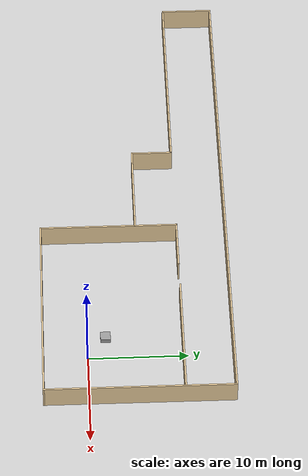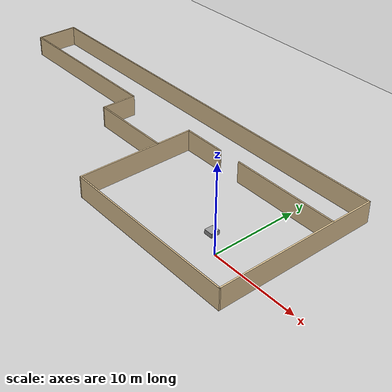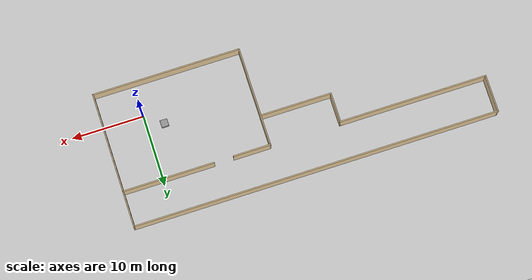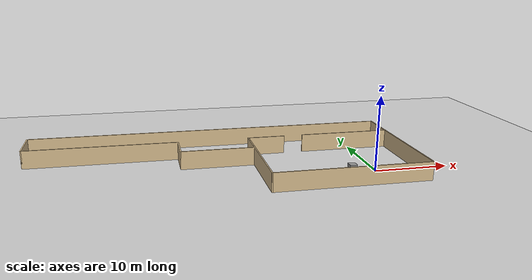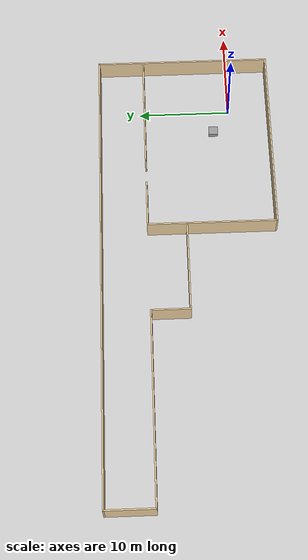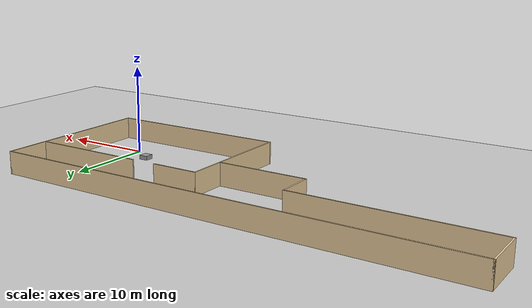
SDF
<sdf version="1.6">
 <world name="default">
  <light name="sun" type="directional">
   <pose>0 0 10 0 -0 0</pose>
   <diffuse>0.8 0.8 0.8 1</diffuse>
   <specular>0.2 0.2 0.2 1</specular>
   <attenuation>
    <range>1000</range>
    <constant>0.9</constant>
    <linear>0.01</linear>
    <quadratic>0.001</quadratic>
   </attenuation>
   <direction>-0.5 0.1 -0.9</direction>
  </light>
  <model name="ground_plane">
   <static>1</static>
   <link name="link">
    <collision name="collision">
     <geometry><plane><normal>0 0 1</normal><size>100 100</size></plane></geometry>
     <surface><friction><ode><mu>100</mu><mu2>50</mu2></ode></friction></surface>
    </collision>
    <visual name="visual">
     <cast_shadows>0</cast_shadows>
     <geometry><plane><normal>0 0 1</normal><size>100 100</size></plane></geometry>
     <material>
      <script><uri>file://media/materials/scripts/gazebo.material</uri><name>Gazebo/Grey</name></script>
     </material>
    </visual>
   </link>
  </model>
  <gravity>0 0 -9.8</gravity>
  <magnetic_field>6e-06 2.3e-05 -4.2e-05</magnetic_field>
  <atmosphere type="adiabatic"/>
  <physics name="default_physics" default="0" type="ode">
   <max_step_size>0.01</max_step_size>
   <real_time_factor>1</real_time_factor>
   <real_time_update_rate>100</real_time_update_rate>
  </physics>
  <scene><ambient>0.4 0.4 0.4 1</ambient><background>0.7 0.7 0.7 1</background><shadows>1</shadows></scene>
  <audio><device>default</device></audio>
  <spherical_coordinates>
   <surface_model>EARTH_WGS84</surface_model>
   <latitude_deg>0</latitude_deg>
   <longitude_deg>0</longitude_deg>
   <elevation>0</elevation>
   <heading_deg>0</heading_deg>
  </spherical_coordinates>
  <model name="KoridorAra">
   <pose>-20 5 0 0 -0 0</pose>
   <link name="Wall_0">
    <collision name="Wall_0_Collision">
     <geometry><box><size>5.25 0.15 2.5</size></box></geometry>
     <pose>0 0 1.25 0 -0 0</pose>
    </collision>
    <visual name="Wall_0_Visual">
     <pose>0 0 1.25 0 -0 0</pose>
     <geometry><box><size>5.25 0.15 2.5</size></box></geometry>
     <material>
      <script><uri>file://media/materials/scripts/gazebo.material</uri><name>Gazebo/Grey</name></script>
      <ambient>0.921569 0.807843 0.615686 1</ambient>
     </material>
    </visual>
    <pose>-25.55 6.875 0 0 0 -1.5708</pose>
   </link>
   <link name="Wall_10">
    <collision name="Wall_10_Collision">
     <geometry><box><size>20.75 0.15 2.5</size></box></geometry>
     <pose>0 0 1.25 0 -0 0</pose>
    </collision>
    <visual name="Wall_10_Visual">
     <pose>0 0 1.25 0 -0 0</pose>
     <geometry><box><size>20.75 0.15 2.5</size></box></geometry>
     <material>
      <script><uri>file://media/materials/scripts/gazebo.material</uri><name>Gazebo/Grey</name></script>
      <ambient>0.921569 0.807843 0.615686 1</ambient>
     </material>
    </visual>
    <pose>-15.25 4.325 0 0 -0 0</pose>
   </link>
   <link name="Wall_11">
    <collision name="Wall_11_Collision">
     <geometry><box><size>4.25 0.15 2.5</size></box></geometry>
     <pose>0 0 1.25 0 -0 0</pose>
    </collision>
    <visual name="Wall_11_Visual">
     <pose>0 0 1.25 0 -0 0</pose>
     <geometry><box><size>4.25 0.15 2.5</size></box></geometry>
     <material>
      <script><uri>file://media/materials/scripts/gazebo.material</uri><name>Gazebo/Grey</name></script>
      <ambient>0.921569 0.807843 0.615686 1</ambient>
     </material>
    </visual>
    <pose>-4.95 2.275 0 0 0 -1.5708</pose>
   </link>
   <link name="Wall_12">
    <collision name="Wall_12_Collision">
     <geometry><box><size>10 0.15 2.5</size></box></geometry>
     <pose>0 0 1.25 0 -0 0</pose>
    </collision>
    <visual name="Wall_12_Visual">
     <pose>0 0 1.25 0 -0 0</pose>
     <geometry><box><size>10 0.15 2.5</size></box></geometry>
     <material>
      <script><uri>file://media/materials/scripts/gazebo.material</uri><name>Gazebo/Grey</name></script>
      <ambient>0.921569 0.807843 0.615686 1</ambient>
     </material>
    </visual>
    <pose>-0.024999 0.225 0 0 -0 0</pose>
   </link>
   <link name="Wall_2">
    <collision name="Wall_2_Collision">
     <geometry><box><size>51.25 0.15 2.5</size></box></geometry>
     <pose>0 0 1.25 0 -0 0</pose>
    </collision>
    <visual name="Wall_2_Visual">
     <pose>0 0 1.25 0 -0 0</pose>
     <geometry><box><size>51.25 0.15 2.5</size></box></geometry>
     <material>
      <script><uri>file://media/materials/scripts/gazebo.material</uri><name>Gazebo/Grey</name></script>
      <ambient>0.921569 0.807843 0.615686 1</ambient>
     </material>
    </visual>
    <pose>1e-06 9.425 0 0 -0 0</pose>
   </link>
   <link name="Wall_3">
    <collision name="Wall_3_Collision">
     <geometry><box><size>19 0.15 2.5</size></box></geometry>
     <pose>0 0 1.25 0 -0 0</pose>
    </collision>
    <visual name="Wall_3_Visual">
     <pose>0 0 1.25 0 -0 0</pose>
     <geometry><box><size>19 0.15 2.5</size></box></geometry>
     <material>
      <script><uri>file://media/materials/scripts/gazebo.material</uri><name>Gazebo/Grey</name></script>
      <ambient>0.921569 0.807843 0.615686 1</ambient>
     </material>
    </visual>
    <pose>25.55 0 0 0 0 -1.5708</pose>
   </link>
   <link name="Wall_4">
    <collision name="Wall_4_Collision">
     <geometry><box><size>20.75 0.15 2.5</size></box></geometry>
     <pose>0 0 1.25 0 -0 0</pose>
    </collision>
    <visual name="Wall_4_Visual">
     <pose>0 0 1.25 0 -0 0</pose>
     <geometry><box><size>20.75 0.15 2.5</size></box></geometry>
     <material>
      <script><uri>file://media/materials/scripts/gazebo.material</uri><name>Gazebo/Grey</name></script>
      <ambient>0.921569 0.807843 0.615686 1</ambient>
     </material>
    </visual>
    <pose>15.25 -9.425 0 0 -0 3.14159</pose>
   </link>
   <link name="Wall_5">
    <collision name="Wall_5_Collision">
     <geometry><box><size>14 0.15 2.5</size></box></geometry>
     <pose>0 0 1.25 0 -0 0</pose>
    </collision>
    <visual name="Wall_5_Visual">
     <pose>0 0 1.25 0 -0 0</pose>
     <geometry><box><size>14 0.15 2.5</size></box></geometry>
     <material>
      <script><uri>file://media/materials/scripts/gazebo.material</uri><name>Gazebo/Grey</name></script>
      <ambient>0.921569 0.807843 0.615686 1</ambient>
     </material>
    </visual>
    <pose>4.95 -2.5 0 0 -0 1.5708</pose>
   </link>
   <link name="Wall_6">
    <collision name="Wall_6_Collision">
     <geometry><box><size>5.25 0.15 2.5</size></box></geometry>
     <pose>0 0 1.25 0 -0 0</pose>
    </collision>
    <visual name="Wall_6_Visual">
     <pose>0 0 1.25 0 -0 0</pose>
     <geometry><box><size>5.25 0.15 2.5</size></box></geometry>
     <material>
      <script><uri>file://media/materials/scripts/gazebo.material</uri><name>Gazebo/Grey</name></script>
      <ambient>0.921569 0.807843 0.615686 1</ambient>
     </material>
    </visual>
    <pose>7.5 4.425 0 0 -0 0</pose>
   </link>
   <link name="Wall_8">
    <collision name="Wall_8_Collision">
     <geometry><box><size>12.75 0.15 2.5</size></box></geometry>
     <pose>0 0 1.25 0 -0 0</pose>
    </collision>
    <visual name="Wall_8_Visual">
     <pose>0 0 1.25 0 -0 0</pose>
     <geometry><box><size>12.75 0.15 2.5</size></box></geometry>
     <material>
      <script><uri>file://media/materials/scripts/gazebo.material</uri><name>Gazebo/Grey</name></script>
      <ambient>0.921569 0.807843 0.615686 1</ambient>
     </material>
    </visual>
    <pose>19.1669 4.45594 0 0 -0 0</pose>
   </link>
   <static>1</static>
  </model>
  <model name="unit_box_0">
   <pose>-2.46213 1.80634 0.238237 0 0 -1.57036</pose>
   <link name="link">
    <inertial>
     <mass>1</mass>
     <inertia>
      <ixx>0.166667</ixx>
      <ixy>0</ixy>
      <ixz>0</ixz>
      <iyy>0.166667</iyy>
      <iyz>0</iyz>
      <izz>0.166667</izz>
     </inertia>
    </inertial>
    <collision name="collision"><geometry><box><size>1 1 0.476473</size></box></geometry></collision>
    <visual name="visual">
     <geometry><box><size>1 1 0.476473</size></box></geometry>
     <material>
      <script><name>Gazebo/Grey</name><uri>file://media/materials/scripts/gazebo.material</uri></script>
     </material>
    </visual>
   </link>
  </model>
 </world>
</sdf>
